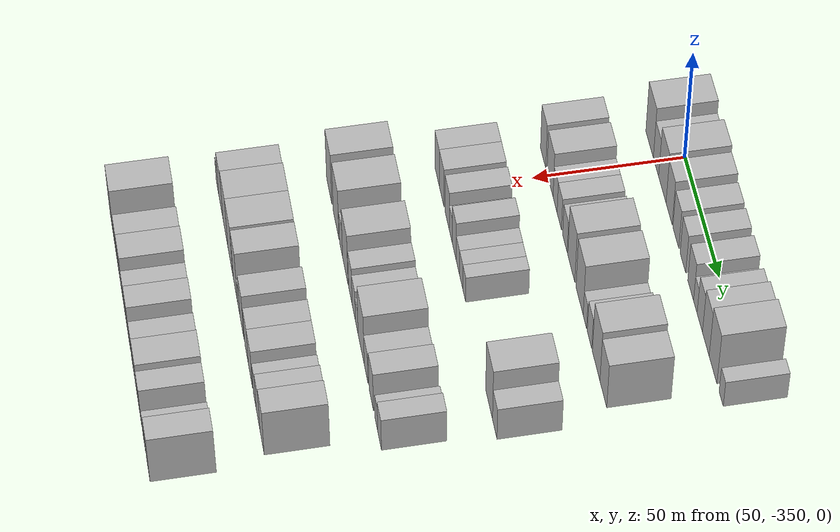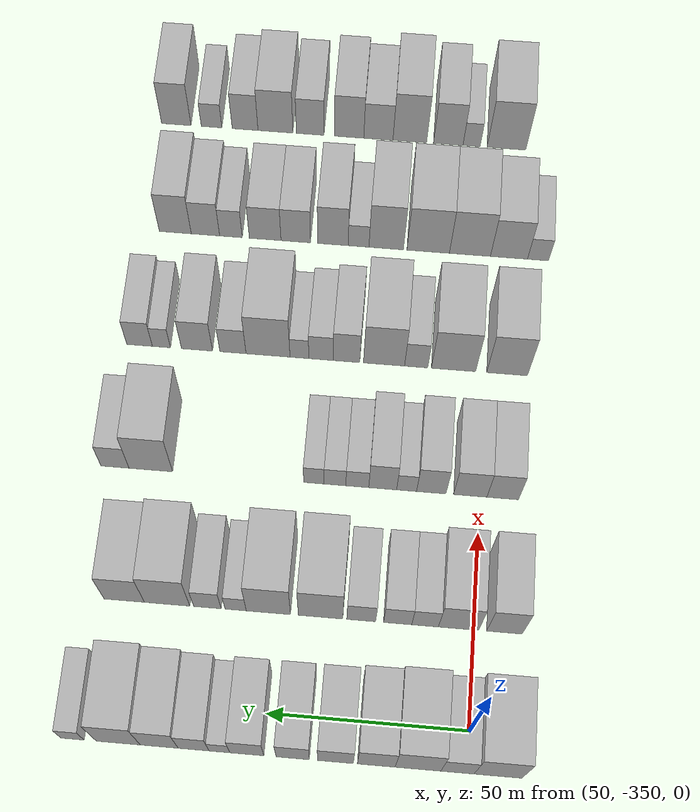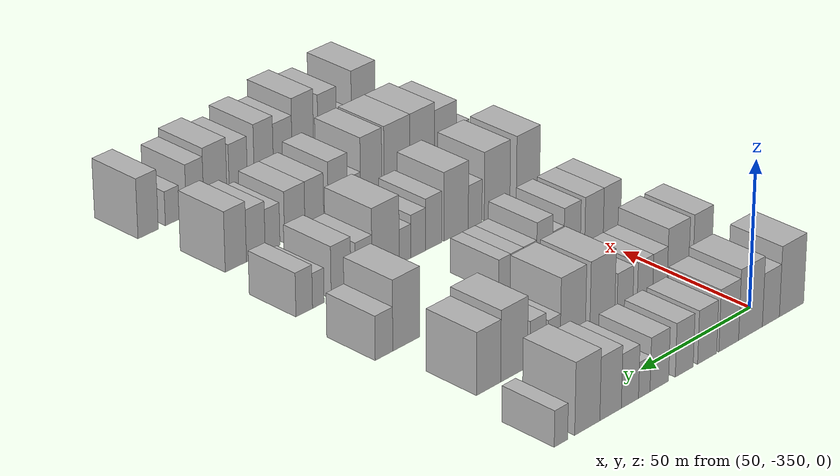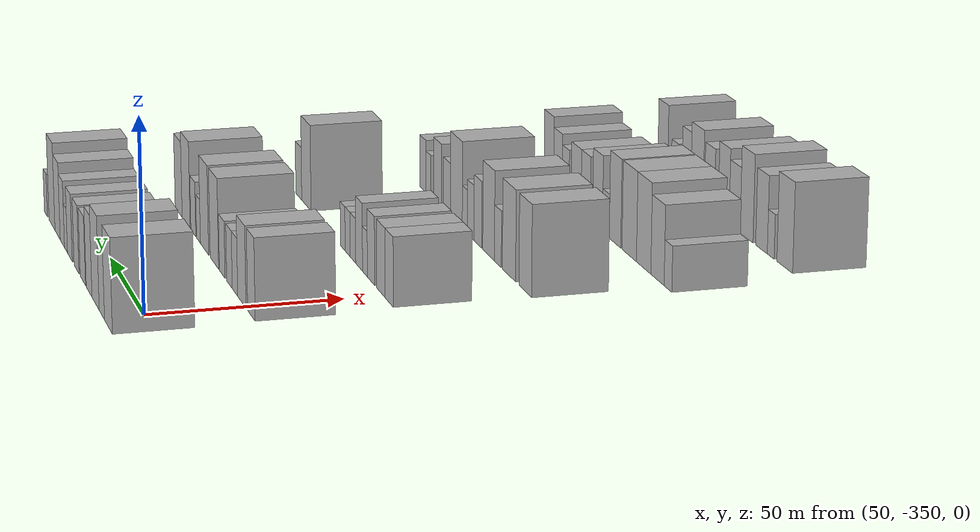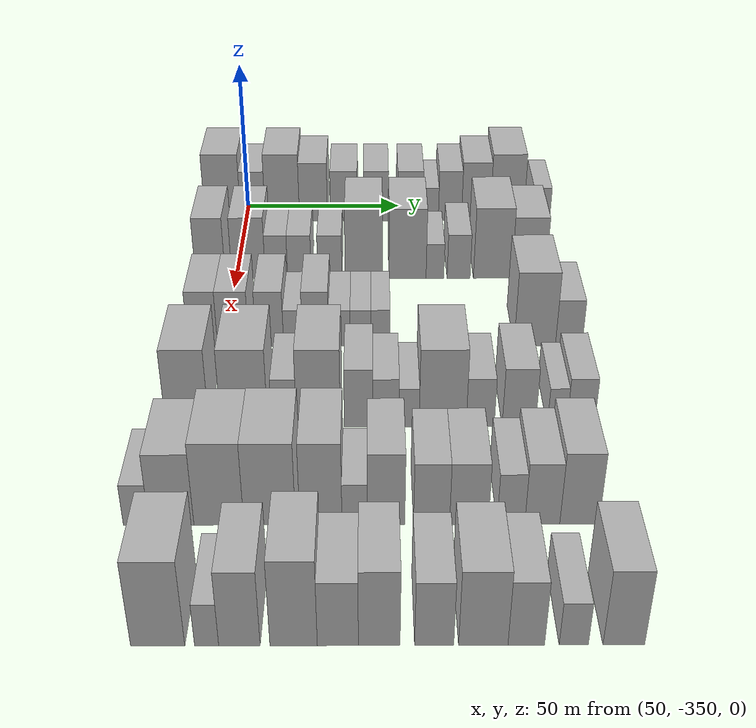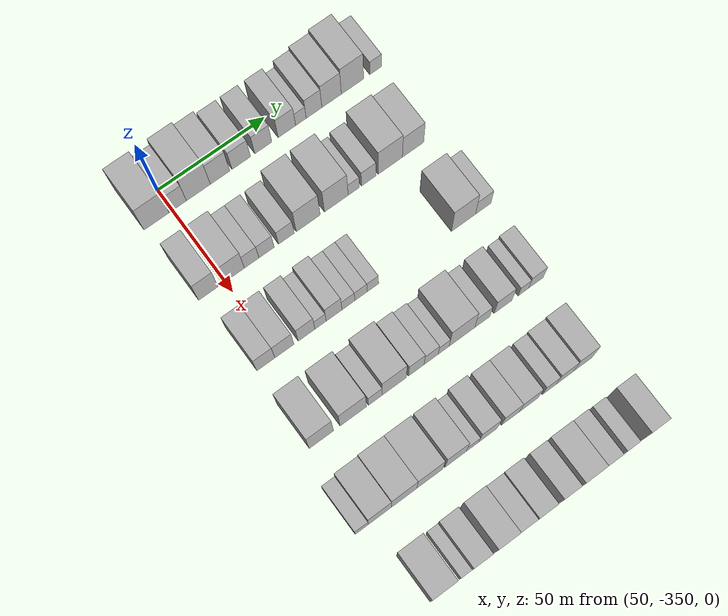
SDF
<sdf version="1.6">
 <world name="default">
  <model name="building_25">
   <static>1</static>
   <pose>50.0000 -357.4346 0 0.000000 0.000000 0.000000</pose>
   <link name="link">
    <pose>0 0 12.00 0 0 0</pose>
    <collision name="collision"><geometry><box><size>20.0000 11.5797 24.0000</size></box></geometry></collision>
    <visual name="visual">
     <cast_shadows>0</cast_shadows>
     <geometry><box><size>20.0000 11.5797 24.0000</size></box></geometry>
     <material>
      <script>
       <uri>model://HANNAS_wall/materials/scripts</uri>
       <uri>model://HANNAS_wall/materials/textures</uri>
       <name>vrc/HANNAS_wall</name>
      </script>
     </material>
    </visual>
   </link>
  </model>
  <model name="building_26">
   <static>1</static>
   <pose>50.0000 -347.6290 0 0.000000 0.000000 0.000000</pose>
   <link name="link">
    <pose>0 0 9.00 0 0 0</pose>
    <collision name="collision"><geometry><box><size>20.0000 8.0316 18.0000</size></box></geometry></collision>
    <visual name="visual">
     <cast_shadows>0</cast_shadows>
     <geometry><box><size>20.0000 8.0316 18.0000</size></box></geometry>
     <material>
      <script>
       <uri>model://HANNAS_wall/materials/scripts</uri>
       <uri>model://HANNAS_wall/materials/textures</uri>
       <name>vrc/HANNAS_wall</name>
      </script>
     </material>
    </visual>
   </link>
  </model>
  <model name="building_27">
   <static>1</static>
   <pose>50.0000 -338.0528 0 0.000000 0.000000 0.000000</pose>
   <link name="link">
    <pose>0 0 12.00 0 0 0</pose>
    <collision name="collision"><geometry><box><size>20.0000 11.1209 24.0000</size></box></geometry></collision>
    <visual name="visual">
     <cast_shadows>0</cast_shadows>
     <geometry><box><size>20.0000 11.1209 24.0000</size></box></geometry>
     <material>
      <script>
       <uri>model://HANNAS_wall/materials/scripts</uri>
       <uri>model://HANNAS_wall/materials/textures</uri>
       <name>vrc/HANNAS_wall</name>
      </script>
     </material>
    </visual>
   </link>
  </model>
  <model name="building_28">
   <static>1</static>
   <pose>50.0000 -327.9274 0 0.000000 0.000000 0.000000</pose>
   <link name="link">
    <pose>0 0 10.50 0 0 0</pose>
    <collision name="collision"><geometry><box><size>20.0000 9.1298 21.0000</size></box></geometry></collision>
    <visual name="visual">
     <cast_shadows>0</cast_shadows>
     <geometry><box><size>20.0000 9.1298 21.0000</size></box></geometry>
     <material>
      <script>
       <uri>model://HANNAS_wall/materials/scripts</uri>
       <uri>model://HANNAS_wall/materials/textures</uri>
       <name>vrc/HANNAS_wall</name>
      </script>
     </material>
    </visual>
   </link>
  </model>
  <model name="building_29">
   <static>1</static>
   <pose>50.0000 -318.0149 0 0.000000 0.000000 0.000000</pose>
   <link name="link">
    <pose>0 0 9.00 0 0 0</pose>
    <collision name="collision"><geometry><box><size>20.0000 8.6952 18.0000</size></box></geometry></collision>
    <visual name="visual">
     <cast_shadows>0</cast_shadows>
     <geometry><box><size>20.0000 8.6952 18.0000</size></box></geometry>
     <material>
      <script>
       <uri>model://HANNAS_wall/materials/scripts</uri>
       <uri>model://HANNAS_wall/materials/textures</uri>
       <name>vrc/HANNAS_wall</name>
      </script>
     </material>
    </visual>
   </link>
  </model>
  <model name="building_30">
   <static>1</static>
   <pose>50.0000 -307.6293 0 0.000000 0.000000 0.000000</pose>
   <link name="link">
    <pose>0 0 9.00 0 0 0</pose>
    <collision name="collision"><geometry><box><size>20.0000 8.0760 18.0000</size></box></geometry></collision>
    <visual name="visual">
     <cast_shadows>0</cast_shadows>
     <geometry><box><size>20.0000 8.0760 18.0000</size></box></geometry>
     <material>
      <script>
       <uri>model://HANNAS_wall/materials/scripts</uri>
       <uri>model://HANNAS_wall/materials/textures</uri>
       <name>vrc/HANNAS_wall</name>
      </script>
     </material>
    </visual>
   </link>
  </model>
  <model name="building_31">
   <static>1</static>
   <pose>50.0000 -296.4434 0 0.000000 0.000000 0.000000</pose>
   <link name="link">
    <pose>0 0 9.00 0 0 0</pose>
    <collision name="collision"><geometry><box><size>20.0000 8.2958 18.0000</size></box></geometry></collision>
    <visual name="visual">
     <cast_shadows>0</cast_shadows>
     <geometry><box><size>20.0000 8.2958 18.0000</size></box></geometry>
     <material>
      <script>
       <uri>model://HANNAS_wall/materials/scripts</uri>
       <uri>model://HANNAS_wall/materials/textures</uri>
       <name>vrc/HANNAS_wall</name>
      </script>
     </material>
    </visual>
   </link>
  </model>
  <model name="building_32">
   <static>1</static>
   <pose>50.0000 -289.7663 0 0.000000 0.000000 0.000000</pose>
   <link name="link">
    <pose>0 0 6.00 0 0 0</pose>
    <collision name="collision"><geometry><box><size>20.0000 5.0585 12.0000</size></box></geometry></collision>
    <visual name="visual">
     <cast_shadows>0</cast_shadows>
     <geometry><box><size>20.0000 5.0585 12.0000</size></box></geometry>
     <material>
      <script>
       <uri>model://HANNAS_wall/materials/scripts</uri>
       <uri>model://HANNAS_wall/materials/textures</uri>
       <name>vrc/HANNAS_wall</name>
      </script>
     </material>
    </visual>
   </link>
  </model>
  <model name="building_33">
   <static>1</static>
   <pose>50.0000 -283.4682 0 0.000000 0.000000 0.000000</pose>
   <link name="link">
    <pose>0 0 9.00 0 0 0</pose>
    <collision name="collision"><geometry><box><size>20.0000 7.5378 18.0000</size></box></geometry></collision>
    <visual name="visual">
     <cast_shadows>0</cast_shadows>
     <geometry><box><size>20.0000 7.5378 18.0000</size></box></geometry>
     <material>
      <script>
       <uri>model://HANNAS_wall/materials/scripts</uri>
       <uri>model://HANNAS_wall/materials/textures</uri>
       <name>vrc/HANNAS_wall</name>
      </script>
     </material>
    </visual>
   </link>
  </model>
  <model name="building_34">
   <static>1</static>
   <pose>50.0000 -275.0343 0 0.000000 0.000000 0.000000</pose>
   <link name="link">
    <pose>0 0 10.50 0 0 0</pose>
    <collision name="collision"><geometry><box><size>20.0000 9.3299 21.0000</size></box></geometry></collision>
    <visual name="visual">
     <cast_shadows>0</cast_shadows>
     <geometry><box><size>20.0000 9.3299 21.0000</size></box></geometry>
     <material>
      <script>
       <uri>model://HANNAS_wall/materials/scripts</uri>
       <uri>model://HANNAS_wall/materials/textures</uri>
       <name>vrc/HANNAS_wall</name>
      </script>
     </material>
    </visual>
   </link>
  </model>
  <model name="building_35">
   <static>1</static>
   <pose>50.0000 -264.9708 0 0.000000 0.000000 0.000000</pose>
   <link name="link">
    <pose>0 0 12.00 0 0 0</pose>
    <collision name="collision"><geometry><box><size>20.0000 10.7972 24.0000</size></box></geometry></collision>
    <visual name="visual">
     <cast_shadows>0</cast_shadows>
     <geometry><box><size>20.0000 10.7972 24.0000</size></box></geometry>
     <material>
      <script>
       <uri>model://HANNAS_wall/materials/scripts</uri>
       <uri>model://HANNAS_wall/materials/textures</uri>
       <name>vrc/HANNAS_wall</name>
      </script>
     </material>
    </visual>
   </link>
  </model>
  <model name="building_36">
   <static>1</static>
   <pose>50.0000 -253.7307 0 0.000000 0.000000 0.000000</pose>
   <link name="link">
    <pose>0 0 6.00 0 0 0</pose>
    <collision name="collision"><geometry><box><size>20.0000 5.6831 12.0000</size></box></geometry></collision>
    <visual name="visual">
     <cast_shadows>0</cast_shadows>
     <geometry><box><size>20.0000 5.6831 12.0000</size></box></geometry>
     <material>
      <script>
       <uri>model://HANNAS_wall/materials/scripts</uri>
       <uri>model://HANNAS_wall/materials/textures</uri>
       <name>vrc/HANNAS_wall</name>
      </script>
     </material>
    </visual>
   </link>
  </model>
  <model name="building_151">
   <static>1</static>
   <pose>85.0000 -357.6794 0 0.000000 0.000000 0.000000</pose>
   <link name="link">
    <pose>0 0 10.50 0 0 0</pose>
    <collision name="collision"><geometry><box><size>20.0000 8.9286 21.0000</size></box></geometry></collision>
    <visual name="visual">
     <cast_shadows>0</cast_shadows>
     <geometry><box><size>20.0000 8.9286 21.0000</size></box></geometry>
     <material>
      <script>
       <uri>model://HANNAS_wall/materials/scripts</uri>
       <uri>model://HANNAS_wall/materials/textures</uri>
       <name>vrc/HANNAS_wall</name>
      </script>
     </material>
    </visual>
   </link>
  </model>
  <model name="building_152">
   <static>1</static>
   <pose>85.0000 -346.1560 0 0.000000 0.000000 0.000000</pose>
   <link name="link">
    <pose>0 0 10.50 0 0 0</pose>
    <collision name="collision"><geometry><box><size>20.0000 10.1183 21.0000</size></box></geometry></collision>
    <visual name="visual">
     <cast_shadows>0</cast_shadows>
     <geometry><box><size>20.0000 10.1183 21.0000</size></box></geometry>
     <material>
      <script>
       <uri>model://HANNAS_wall/materials/scripts</uri>
       <uri>model://HANNAS_wall/materials/textures</uri>
       <name>vrc/HANNAS_wall</name>
      </script>
     </material>
    </visual>
   </link>
  </model>
  <model name="building_153">
   <static>1</static>
   <pose>85.0000 -337.7412 0 0.000000 0.000000 0.000000</pose>
   <link name="link">
    <pose>0 0 7.50 0 0 0</pose>
    <collision name="collision"><geometry><box><size>20.0000 6.7113 15.0000</size></box></geometry></collision>
    <visual name="visual">
     <cast_shadows>0</cast_shadows>
     <geometry><box><size>20.0000 6.7113 15.0000</size></box></geometry>
     <material>
      <script>
       <uri>model://HANNAS_wall/materials/scripts</uri>
       <uri>model://HANNAS_wall/materials/textures</uri>
       <name>vrc/HANNAS_wall</name>
      </script>
     </material>
    </visual>
   </link>
  </model>
  <model name="building_154">
   <static>1</static>
   <pose>85.0000 -330.8431 0 0.000000 0.000000 0.000000</pose>
   <link name="link">
    <pose>0 0 7.50 0 0 0</pose>
    <collision name="collision"><geometry><box><size>20.0000 7.0849 15.0000</size></box></geometry></collision>
    <visual name="visual">
     <cast_shadows>0</cast_shadows>
     <geometry><box><size>20.0000 7.0849 15.0000</size></box></geometry>
     <material>
      <script>
       <uri>model://HANNAS_wall/materials/scripts</uri>
       <uri>model://HANNAS_wall/materials/textures</uri>
       <name>vrc/HANNAS_wall</name>
      </script>
     </material>
    </visual>
   </link>
  </model>
  <model name="building_155">
   <static>1</static>
   <pose>85.0000 -321.6571 0 0.000000 0.000000 0.000000</pose>
   <link name="link">
    <pose>0 0 7.50 0 0 0</pose>
    <collision name="collision"><geometry><box><size>20.0000 7.2870 15.0000</size></box></geometry></collision>
    <visual name="visual">
     <cast_shadows>0</cast_shadows>
     <geometry><box><size>20.0000 7.2870 15.0000</size></box></geometry>
     <material>
      <script>
       <uri>model://HANNAS_wall/materials/scripts</uri>
       <uri>model://HANNAS_wall/materials/textures</uri>
       <name>vrc/HANNAS_wall</name>
      </script>
     </material>
    </visual>
   </link>
  </model>
  <model name="building_156">
   <static>1</static>
   <pose>85.0000 -311.4103 0 0.000000 0.000000 0.000000</pose>
   <link name="link">
    <pose>0 0 12.00 0 0 0</pose>
    <collision name="collision"><geometry><box><size>20.0000 11.2068 24.0000</size></box></geometry></collision>
    <visual name="visual">
     <cast_shadows>0</cast_shadows>
     <geometry><box><size>20.0000 11.2068 24.0000</size></box></geometry>
     <material>
      <script>
       <uri>model://HANNAS_wall/materials/scripts</uri>
       <uri>model://HANNAS_wall/materials/textures</uri>
       <name>vrc/HANNAS_wall</name>
      </script>
     </material>
    </visual>
   </link>
  </model>
  <model name="building_157">
   <static>1</static>
   <pose>85.0000 -298.2097 0 0.000000 0.000000 0.000000</pose>
   <link name="link">
    <pose>0 0 12.00 0 0 0</pose>
    <collision name="collision"><geometry><box><size>20.0000 11.1944 24.0000</size></box></geometry></collision>
    <visual name="visual">
     <cast_shadows>0</cast_shadows>
     <geometry><box><size>20.0000 11.1944 24.0000</size></box></geometry>
     <material>
      <script>
       <uri>model://HANNAS_wall/materials/scripts</uri>
       <uri>model://HANNAS_wall/materials/textures</uri>
       <name>vrc/HANNAS_wall</name>
      </script>
     </material>
    </visual>
   </link>
  </model>
  <model name="building_158">
   <static>1</static>
   <pose>85.0000 -289.9256 0 0.000000 0.000000 0.000000</pose>
   <link name="link">
    <pose>0 0 6.00 0 0 0</pose>
    <collision name="collision"><geometry><box><size>20.0000 5.3738 12.0000</size></box></geometry></collision>
    <visual name="visual">
     <cast_shadows>0</cast_shadows>
     <geometry><box><size>20.0000 5.3738 12.0000</size></box></geometry>
     <material>
      <script>
       <uri>model://HANNAS_wall/materials/scripts</uri>
       <uri>model://HANNAS_wall/materials/textures</uri>
       <name>vrc/HANNAS_wall</name>
      </script>
     </material>
    </visual>
   </link>
  </model>
  <model name="building_159">
   <static>1</static>
   <pose>85.0000 -282.7650 0 0.000000 0.000000 0.000000</pose>
   <link name="link">
    <pose>0 0 7.50 0 0 0</pose>
    <collision name="collision"><geometry><box><size>20.0000 6.9473 15.0000</size></box></geometry></collision>
    <visual name="visual">
     <cast_shadows>0</cast_shadows>
     <geometry><box><size>20.0000 6.9473 15.0000</size></box></geometry>
     <material>
      <script>
       <uri>model://HANNAS_wall/materials/scripts</uri>
       <uri>model://HANNAS_wall/materials/textures</uri>
       <name>vrc/HANNAS_wall</name>
      </script>
     </material>
    </visual>
   </link>
  </model>
  <model name="building_160">
   <static>1</static>
   <pose>85.0000 -272.5068 0 0.000000 0.000000 0.000000</pose>
   <link name="link">
    <pose>0 0 12.00 0 0 0</pose>
    <collision name="collision"><geometry><box><size>20.0000 11.5691 24.0000</size></box></geometry></collision>
    <visual name="visual">
     <cast_shadows>0</cast_shadows>
     <geometry><box><size>20.0000 11.5691 24.0000</size></box></geometry>
     <material>
      <script>
       <uri>model://HANNAS_wall/materials/scripts</uri>
       <uri>model://HANNAS_wall/materials/textures</uri>
       <name>vrc/HANNAS_wall</name>
      </script>
     </material>
    </visual>
   </link>
  </model>
  <model name="building_161">
   <static>1</static>
   <pose>85.0000 -261.5909 0 0.000000 0.000000 0.000000</pose>
   <link name="link">
    <pose>0 0 10.50 0 0 0</pose>
    <collision name="collision"><geometry><box><size>20.0000 10.2625 21.0000</size></box></geometry></collision>
    <visual name="visual">
     <cast_shadows>0</cast_shadows>
     <geometry><box><size>20.0000 10.2625 21.0000</size></box></geometry>
     <material>
      <script>
       <uri>model://HANNAS_wall/materials/scripts</uri>
       <uri>model://HANNAS_wall/materials/textures</uri>
       <name>vrc/HANNAS_wall</name>
      </script>
     </material>
    </visual>
   </link>
  </model>
  <model name="building_282">
   <static>1</static>
   <pose>120.0000 -355.9414 0 0.000000 0.000000 0.000000</pose>
   <link name="link">
    <pose>0 0 9.00 0 0 0</pose>
    <collision name="collision"><geometry><box><size>20.0000 8.1925 18.0000</size></box></geometry></collision>
    <visual name="visual">
     <cast_shadows>0</cast_shadows>
     <geometry><box><size>20.0000 8.1925 18.0000</size></box></geometry>
     <material>
      <script>
       <uri>model://HANNAS_wall/materials/scripts</uri>
       <uri>model://HANNAS_wall/materials/textures</uri>
       <name>vrc/HANNAS_wall</name>
      </script>
     </material>
    </visual>
   </link>
  </model>
  <model name="building_283">
   <static>1</static>
   <pose>120.0000 -347.5058 0 0.000000 0.000000 0.000000</pose>
   <link name="link">
    <pose>0 0 9.00 0 0 0</pose>
    <collision name="collision"><geometry><box><size>20.0000 8.6788 18.0000</size></box></geometry></collision>
    <visual name="visual">
     <cast_shadows>0</cast_shadows>
     <geometry><box><size>20.0000 8.6788 18.0000</size></box></geometry>
     <material>
      <script>
       <uri>model://HANNAS_wall/materials/scripts</uri>
       <uri>model://HANNAS_wall/materials/textures</uri>
       <name>vrc/HANNAS_wall</name>
      </script>
     </material>
    </visual>
   </link>
  </model>
  <model name="building_284">
   <static>1</static>
   <pose>120.0000 -337.3315 0 0.000000 0.000000 0.000000</pose>
   <link name="link">
    <pose>0 0 9.00 0 0 0</pose>
    <collision name="collision"><geometry><box><size>20.0000 7.6699 18.0000</size></box></geometry></collision>
    <visual name="visual">
     <cast_shadows>0</cast_shadows>
     <geometry><box><size>20.0000 7.6699 18.0000</size></box></geometry>
     <material>
      <script>
       <uri>model://HANNAS_wall/materials/scripts</uri>
       <uri>model://HANNAS_wall/materials/textures</uri>
       <name>vrc/HANNAS_wall</name>
      </script>
     </material>
    </visual>
   </link>
  </model>
  <model name="building_285">
   <static>1</static>
   <pose>120.0000 -330.8963 0 0.000000 0.000000 0.000000</pose>
   <link name="link">
    <pose>0 0 6.00 0 0 0</pose>
    <collision name="collision"><geometry><box><size>20.0000 5.2005 12.0000</size></box></geometry></collision>
    <visual name="visual">
     <cast_shadows>0</cast_shadows>
     <geometry><box><size>20.0000 5.2005 12.0000</size></box></geometry>
     <material>
      <script>
       <uri>model://HANNAS_wall/materials/scripts</uri>
       <uri>model://HANNAS_wall/materials/textures</uri>
       <name>vrc/HANNAS_wall</name>
      </script>
     </material>
    </visual>
   </link>
  </model>
  <model name="building_286">
   <static>1</static>
   <pose>120.0000 -324.6515 0 0.000000 0.000000 0.000000</pose>
   <link name="link">
    <pose>0 0 9.00 0 0 0</pose>
    <collision name="collision"><geometry><box><size>20.0000 7.2892 18.0000</size></box></geometry></collision>
    <visual name="visual">
     <cast_shadows>0</cast_shadows>
     <geometry><box><size>20.0000 7.2892 18.0000</size></box></geometry>
     <material>
      <script>
       <uri>model://HANNAS_wall/materials/scripts</uri>
       <uri>model://HANNAS_wall/materials/textures</uri>
       <name>vrc/HANNAS_wall</name>
      </script>
     </material>
    </visual>
   </link>
  </model>
  <model name="building_287">
   <static>1</static>
   <pose>120.0000 -318.0149 0 0.000000 0.000000 0.000000</pose>
   <link name="link">
    <pose>0 0 6.00 0 0 0</pose>
    <collision name="collision"><geometry><box><size>20.0000 5.9840 12.0000</size></box></geometry></collision>
    <visual name="visual">
     <cast_shadows>0</cast_shadows>
     <geometry><box><size>20.0000 5.9840 12.0000</size></box></geometry>
     <material>
      <script>
       <uri>model://HANNAS_wall/materials/scripts</uri>
       <uri>model://HANNAS_wall/materials/textures</uri>
       <name>vrc/HANNAS_wall</name>
      </script>
     </material>
    </visual>
   </link>
  </model>
  <model name="building_288">
   <static>1</static>
   <pose>120.0000 -312.1714 0 0.000000 0.000000 0.000000</pose>
   <link name="link">
    <pose>0 0 6.00 0 0 0</pose>
    <collision name="collision"><geometry><box><size>20.0000 5.7029 12.0000</size></box></geometry></collision>
    <visual name="visual">
     <cast_shadows>0</cast_shadows>
     <geometry><box><size>20.0000 5.7029 12.0000</size></box></geometry>
     <material>
      <script>
       <uri>model://HANNAS_wall/materials/scripts</uri>
       <uri>model://HANNAS_wall/materials/textures</uri>
       <name>vrc/HANNAS_wall</name>
      </script>
     </material>
    </visual>
   </link>
  </model>
  <model name="building_289">
   <static>1</static>
   <pose>120.0000 -306.6632 0 0.000000 0.000000 0.000000</pose>
   <link name="link">
    <pose>0 0 6.00 0 0 0</pose>
    <collision name="collision"><geometry><box><size>20.0000 5.3135 12.0000</size></box></geometry></collision>
    <visual name="visual">
     <cast_shadows>0</cast_shadows>
     <geometry><box><size>20.0000 5.3135 12.0000</size></box></geometry>
     <material>
      <script>
       <uri>model://HANNAS_wall/materials/scripts</uri>
       <uri>model://HANNAS_wall/materials/textures</uri>
       <name>vrc/HANNAS_wall</name>
      </script>
     </material>
    </visual>
   </link>
  </model>
  <model name="building_290">
   <static>1</static>
   <pose>120.0000 -263.7652 0 0.000000 0.000000 0.000000</pose>
   <link name="link">
    <pose>0 0 12.00 0 0 0</pose>
    <collision name="collision"><geometry><box><size>20.0000 11.4942 24.0000</size></box></geometry></collision>
    <visual name="visual">
     <cast_shadows>0</cast_shadows>
     <geometry><box><size>20.0000 11.4942 24.0000</size></box></geometry>
     <material>
      <script>
       <uri>model://HANNAS_wall/materials/scripts</uri>
       <uri>model://HANNAS_wall/materials/textures</uri>
       <name>vrc/HANNAS_wall</name>
      </script>
     </material>
    </visual>
   </link>
  </model>
  <model name="building_291">
   <static>1</static>
   <pose>120.0000 -254.3070 0 0.000000 0.000000 0.000000</pose>
   <link name="link">
    <pose>0 0 7.50 0 0 0</pose>
    <collision name="collision"><geometry><box><size>20.0000 7.4222 15.0000</size></box></geometry></collision>
    <visual name="visual">
     <cast_shadows>0</cast_shadows>
     <geometry><box><size>20.0000 7.4222 15.0000</size></box></geometry>
     <material>
      <script>
       <uri>model://HANNAS_wall/materials/scripts</uri>
       <uri>model://HANNAS_wall/materials/textures</uri>
       <name>vrc/HANNAS_wall</name>
      </script>
     </material>
    </visual>
   </link>
  </model>
  <model name="building_406">
   <static>1</static>
   <pose>155.0000 -355.8126 0 0.000000 0.000000 0.000000</pose>
   <link name="link">
    <pose>0 0 12.00 0 0 0</pose>
    <collision name="collision"><geometry><box><size>20.0000 10.9500 24.0000</size></box></geometry></collision>
    <visual name="visual">
     <cast_shadows>0</cast_shadows>
     <geometry><box><size>20.0000 10.9500 24.0000</size></box></geometry>
     <material>
      <script>
       <uri>model://HANNAS_wall/materials/scripts</uri>
       <uri>model://HANNAS_wall/materials/textures</uri>
       <name>vrc/HANNAS_wall</name>
      </script>
     </material>
    </visual>
   </link>
  </model>
  <model name="building_407">
   <static>1</static>
   <pose>155.0000 -341.3794 0 0.000000 0.000000 0.000000</pose>
   <link name="link">
    <pose>0 0 12.00 0 0 0</pose>
    <collision name="collision"><geometry><box><size>20.0000 11.9165 24.0000</size></box></geometry></collision>
    <visual name="visual">
     <cast_shadows>0</cast_shadows>
     <geometry><box><size>20.0000 11.9165 24.0000</size></box></geometry>
     <material>
      <script>
       <uri>model://HANNAS_wall/materials/scripts</uri>
       <uri>model://HANNAS_wall/materials/textures</uri>
       <name>vrc/HANNAS_wall</name>
      </script>
     </material>
    </visual>
   </link>
  </model>
  <model name="building_408">
   <static>1</static>
   <pose>155.0000 -331.2889 0 0.000000 0.000000 0.000000</pose>
   <link name="link">
    <pose>0 0 7.50 0 0 0</pose>
    <collision name="collision"><geometry><box><size>20.0000 6.2644 15.0000</size></box></geometry></collision>
    <visual name="visual">
     <cast_shadows>0</cast_shadows>
     <geometry><box><size>20.0000 6.2644 15.0000</size></box></geometry>
     <material>
      <script>
       <uri>model://HANNAS_wall/materials/scripts</uri>
       <uri>model://HANNAS_wall/materials/textures</uri>
       <name>vrc/HANNAS_wall</name>
      </script>
     </material>
    </visual>
   </link>
  </model>
  <model name="building_409">
   <static>1</static>
   <pose>155.0000 -322.5983 0 0.000000 0.000000 0.000000</pose>
   <link name="link">
    <pose>0 0 12.00 0 0 0</pose>
    <collision name="collision"><geometry><box><size>20.0000 11.1167 24.0000</size></box></geometry></collision>
    <visual name="visual">
     <cast_shadows>0</cast_shadows>
     <geometry><box><size>20.0000 11.1167 24.0000</size></box></geometry>
     <material>
      <script>
       <uri>model://HANNAS_wall/materials/scripts</uri>
       <uri>model://HANNAS_wall/materials/textures</uri>
       <name>vrc/HANNAS_wall</name>
      </script>
     </material>
    </visual>
   </link>
  </model>
  <model name="building_410">
   <static>1</static>
   <pose>155.0000 -312.4249 0 0.000000 0.000000 0.000000</pose>
   <link name="link">
    <pose>0 0 9.00 0 0 0</pose>
    <collision name="collision"><geometry><box><size>20.0000 7.2303 18.0000</size></box></geometry></collision>
    <visual name="visual">
     <cast_shadows>0</cast_shadows>
     <geometry><box><size>20.0000 7.2303 18.0000</size></box></geometry>
     <material>
      <script>
       <uri>model://HANNAS_wall/materials/scripts</uri>
       <uri>model://HANNAS_wall/materials/textures</uri>
       <name>vrc/HANNAS_wall</name>
      </script>
     </material>
    </visual>
   </link>
  </model>
  <model name="building_411">
   <static>1</static>
   <pose>155.0000 -305.5166 0 0.000000 0.000000 0.000000</pose>
   <link name="link">
    <pose>0 0 7.50 0 0 0</pose>
    <collision name="collision"><geometry><box><size>20.0000 6.5864 15.0000</size></box></geometry></collision>
    <visual name="visual">
     <cast_shadows>0</cast_shadows>
     <geometry><box><size>20.0000 6.5864 15.0000</size></box></geometry>
     <material>
      <script>
       <uri>model://HANNAS_wall/materials/scripts</uri>
       <uri>model://HANNAS_wall/materials/textures</uri>
       <name>vrc/HANNAS_wall</name>
      </script>
     </material>
    </visual>
   </link>
  </model>
  <model name="building_412">
   <static>1</static>
   <pose>155.0000 -299.6690 0 0.000000 0.000000 0.000000</pose>
   <link name="link">
    <pose>0 0 6.00 0 0 0</pose>
    <collision name="collision"><geometry><box><size>20.0000 5.1088 12.0000</size></box></geometry></collision>
    <visual name="visual">
     <cast_shadows>0</cast_shadows>
     <geometry><box><size>20.0000 5.1088 12.0000</size></box></geometry>
     <material>
      <script>
       <uri>model://HANNAS_wall/materials/scripts</uri>
       <uri>model://HANNAS_wall/materials/textures</uri>
       <name>vrc/HANNAS_wall</name>
      </script>
     </material>
    </visual>
   </link>
  </model>
  <model name="building_413">
   <static>1</static>
   <pose>155.0000 -291.1438 0 0.000000 0.000000 0.000000</pose>
   <link name="link">
    <pose>0 0 12.00 0 0 0</pose>
    <collision name="collision"><geometry><box><size>20.0000 11.9416 24.0000</size></box></geometry></collision>
    <visual name="visual">
     <cast_shadows>0</cast_shadows>
     <geometry><box><size>20.0000 11.9416 24.0000</size></box></geometry>
     <material>
      <script>
       <uri>model://HANNAS_wall/materials/scripts</uri>
       <uri>model://HANNAS_wall/materials/textures</uri>
       <name>vrc/HANNAS_wall</name>
      </script>
     </material>
    </visual>
   </link>
  </model>
  <model name="building_414">
   <static>1</static>
   <pose>155.0000 -281.6075 0 0.000000 0.000000 0.000000</pose>
   <link name="link">
    <pose>0 0 7.50 0 0 0</pose>
    <collision name="collision"><geometry><box><size>20.0000 7.1310 15.0000</size></box></geometry></collision>
    <visual name="visual">
     <cast_shadows>0</cast_shadows>
     <geometry><box><size>20.0000 7.1310 15.0000</size></box></geometry>
     <material>
      <script>
       <uri>model://HANNAS_wall/materials/scripts</uri>
       <uri>model://HANNAS_wall/materials/textures</uri>
       <name>vrc/HANNAS_wall</name>
      </script>
     </material>
    </visual>
   </link>
  </model>
  <model name="building_415">
   <static>1</static>
   <pose>155.0000 -271.8062 0 0.000000 0.000000 0.000000</pose>
   <link name="link">
    <pose>0 0 9.00 0 0 0</pose>
    <collision name="collision"><geometry><box><size>20.0000 8.4717 18.0000</size></box></geometry></collision>
    <visual name="visual">
     <cast_shadows>0</cast_shadows>
     <geometry><box><size>20.0000 8.4717 18.0000</size></box></geometry>
     <material>
      <script>
       <uri>model://HANNAS_wall/materials/scripts</uri>
       <uri>model://HANNAS_wall/materials/textures</uri>
       <name>vrc/HANNAS_wall</name>
      </script>
     </material>
    </visual>
   </link>
  </model>
  <model name="building_416">
   <static>1</static>
   <pose>155.0000 -262.1059 0 0.000000 0.000000 0.000000</pose>
   <link name="link">
    <pose>0 0 6.00 0 0 0</pose>
    <collision name="collision"><geometry><box><size>20.0000 4.9289 12.0000</size></box></geometry></collision>
    <visual name="visual">
     <cast_shadows>0</cast_shadows>
     <geometry><box><size>20.0000 4.9289 12.0000</size></box></geometry>
     <material>
      <script>
       <uri>model://HANNAS_wall/materials/scripts</uri>
       <uri>model://HANNAS_wall/materials/textures</uri>
       <name>vrc/HANNAS_wall</name>
      </script>
     </material>
    </visual>
   </link>
  </model>
  <model name="building_417">
   <static>1</static>
   <pose>155.0000 -256.1446 0 0.000000 0.000000 0.000000</pose>
   <link name="link">
    <pose>0 0 7.50 0 0 0</pose>
    <collision name="collision"><geometry><box><size>20.0000 6.9936 15.0000</size></box></geometry></collision>
    <visual name="visual">
     <cast_shadows>0</cast_shadows>
     <geometry><box><size>20.0000 6.9936 15.0000</size></box></geometry>
     <material>
      <script>
       <uri>model://HANNAS_wall/materials/scripts</uri>
       <uri>model://HANNAS_wall/materials/textures</uri>
       <name>vrc/HANNAS_wall</name>
      </script>
     </material>
    </visual>
   </link>
  </model>
  <model name="building_531">
   <static>1</static>
   <pose>190.0000 -363.1615 0 0.000000 0.000000 0.000000</pose>
   <link name="link">
    <pose>0 0 6.00 0 0 0</pose>
    <collision name="collision"><geometry><box><size>20.0000 5.8656 12.0000</size></box></geometry></collision>
    <visual name="visual">
     <cast_shadows>0</cast_shadows>
     <geometry><box><size>20.0000 5.8656 12.0000</size></box></geometry>
     <material>
      <script>
       <uri>model://HANNAS_wall/materials/scripts</uri>
       <uri>model://HANNAS_wall/materials/textures</uri>
       <name>vrc/HANNAS_wall</name>
      </script>
     </material>
    </visual>
   </link>
  </model>
  <model name="building_532">
   <static>1</static>
   <pose>190.0000 -355.0699 0 0.000000 0.000000 0.000000</pose>
   <link name="link">
    <pose>0 0 10.50 0 0 0</pose>
    <collision name="collision"><geometry><box><size>20.0000 10.3176 21.0000</size></box></geometry></collision>
    <visual name="visual">
     <cast_shadows>0</cast_shadows>
     <geometry><box><size>20.0000 10.3176 21.0000</size></box></geometry>
     <material>
      <script>
       <uri>model://HANNAS_wall/materials/scripts</uri>
       <uri>model://HANNAS_wall/materials/textures</uri>
       <name>vrc/HANNAS_wall</name>
      </script>
     </material>
    </visual>
   </link>
  </model>
  <model name="building_533">
   <static>1</static>
   <pose>190.0000 -344.1907 0 0.000000 0.000000 0.000000</pose>
   <link name="link">
    <pose>0 0 12.00 0 0 0</pose>
    <collision name="collision"><geometry><box><size>20.0000 11.4408 24.0000</size></box></geometry></collision>
    <visual name="visual">
     <cast_shadows>0</cast_shadows>
     <geometry><box><size>20.0000 11.4408 24.0000</size></box></geometry>
     <material>
      <script>
       <uri>model://HANNAS_wall/materials/scripts</uri>
       <uri>model://HANNAS_wall/materials/textures</uri>
       <name>vrc/HANNAS_wall</name>
      </script>
     </material>
    </visual>
   </link>
  </model>
  <model name="building_534">
   <static>1</static>
   <pose>190.0000 -332.5465 0 0.000000 0.000000 0.000000</pose>
   <link name="link">
    <pose>0 0 12.00 0 0 0</pose>
    <collision name="collision"><geometry><box><size>20.0000 11.8475 24.0000</size></box></geometry></collision>
    <visual name="visual">
     <cast_shadows>0</cast_shadows>
     <geometry><box><size>20.0000 11.8475 24.0000</size></box></geometry>
     <material>
      <script>
       <uri>model://HANNAS_wall/materials/scripts</uri>
       <uri>model://HANNAS_wall/materials/textures</uri>
       <name>vrc/HANNAS_wall</name>
      </script>
     </material>
    </visual>
   </link>
  </model>
  <model name="building_535">
   <static>1</static>
   <pose>190.0000 -320.8013 0 0.000000 0.000000 0.000000</pose>
   <link name="link">
    <pose>0 0 12.00 0 0 0</pose>
    <collision name="collision"><geometry><box><size>20.0000 9.6429 24.0000</size></box></geometry></collision>
    <visual name="visual">
     <cast_shadows>0</cast_shadows>
     <geometry><box><size>20.0000 9.6429 24.0000</size></box></geometry>
     <material>
      <script>
       <uri>model://HANNAS_wall/materials/scripts</uri>
       <uri>model://HANNAS_wall/materials/textures</uri>
       <name>vrc/HANNAS_wall</name>
      </script>
     </material>
    </visual>
   </link>
  </model>
  <model name="building_536">
   <static>1</static>
   <pose>190.0000 -313.0587 0 0.000000 0.000000 0.000000</pose>
   <link name="link">
    <pose>0 0 6.00 0 0 0</pose>
    <collision name="collision"><geometry><box><size>20.0000 5.8421 12.0000</size></box></geometry></collision>
    <visual name="visual">
     <cast_shadows>0</cast_shadows>
     <geometry><box><size>20.0000 5.8421 12.0000</size></box></geometry>
     <material>
      <script>
       <uri>model://HANNAS_wall/materials/scripts</uri>
       <uri>model://HANNAS_wall/materials/textures</uri>
       <name>vrc/HANNAS_wall</name>
      </script>
     </material>
    </visual>
   </link>
  </model>
  <model name="building_537">
   <static>1</static>
   <pose>190.0000 -305.8584 0 0.000000 0.000000 0.000000</pose>
   <link name="link">
    <pose>0 0 10.50 0 0 0</pose>
    <collision name="collision"><geometry><box><size>20.0000 8.5586 21.0000</size></box></geometry></collision>
    <visual name="visual">
     <cast_shadows>0</cast_shadows>
     <geometry><box><size>20.0000 8.5586 21.0000</size></box></geometry>
     <material>
      <script>
       <uri>model://HANNAS_wall/materials/scripts</uri>
       <uri>model://HANNAS_wall/materials/textures</uri>
       <name>vrc/HANNAS_wall</name>
      </script>
     </material>
    </visual>
   </link>
  </model>
  <model name="building_538">
   <static>1</static>
   <pose>190.0000 -295.4440 0 0.000000 0.000000 0.000000</pose>
   <link name="link">
    <pose>0 0 9.00 0 0 0</pose>
    <collision name="collision"><geometry><box><size>20.0000 8.2702 18.0000</size></box></geometry></collision>
    <visual name="visual">
     <cast_shadows>0</cast_shadows>
     <geometry><box><size>20.0000 8.2702 18.0000</size></box></geometry>
     <material>
      <script>
       <uri>model://HANNAS_wall/materials/scripts</uri>
       <uri>model://HANNAS_wall/materials/textures</uri>
       <name>vrc/HANNAS_wall</name>
      </script>
     </material>
    </visual>
   </link>
  </model>
  <model name="building_539">
   <static>1</static>
   <pose>190.0000 -286.8564 0 0.000000 0.000000 0.000000</pose>
   <link name="link">
    <pose>0 0 9.00 0 0 0</pose>
    <collision name="collision"><geometry><box><size>20.0000 8.9049 18.0000</size></box></geometry></collision>
    <visual name="visual">
     <cast_shadows>0</cast_shadows>
     <geometry><box><size>20.0000 8.9049 18.0000</size></box></geometry>
     <material>
      <script>
       <uri>model://HANNAS_wall/materials/scripts</uri>
       <uri>model://HANNAS_wall/materials/textures</uri>
       <name>vrc/HANNAS_wall</name>
      </script>
     </material>
    </visual>
   </link>
  </model>
  <model name="building_540">
   <static>1</static>
   <pose>190.0000 -277.2260 0 0.000000 0.000000 0.000000</pose>
   <link name="link">
    <pose>0 0 7.50 0 0 0</pose>
    <collision name="collision"><geometry><box><size>20.0000 6.3559 15.0000</size></box></geometry></collision>
    <visual name="visual">
     <cast_shadows>0</cast_shadows>
     <geometry><box><size>20.0000 6.3559 15.0000</size></box></geometry>
     <material>
      <script>
       <uri>model://HANNAS_wall/materials/scripts</uri>
       <uri>model://HANNAS_wall/materials/textures</uri>
       <name>vrc/HANNAS_wall</name>
      </script>
     </material>
    </visual>
   </link>
  </model>
  <model name="building_541">
   <static>1</static>
   <pose>190.0000 -270.0399 0 0.000000 0.000000 0.000000</pose>
   <link name="link">
    <pose>0 0 9.00 0 0 0</pose>
    <collision name="collision"><geometry><box><size>20.0000 8.0163 18.0000</size></box></geometry></collision>
    <visual name="visual">
     <cast_shadows>0</cast_shadows>
     <geometry><box><size>20.0000 8.0163 18.0000</size></box></geometry>
     <material>
      <script>
       <uri>model://HANNAS_wall/materials/scripts</uri>
       <uri>model://HANNAS_wall/materials/textures</uri>
       <name>vrc/HANNAS_wall</name>
      </script>
     </material>
    </visual>
   </link>
  </model>
  <model name="building_542">
   <static>1</static>
   <pose>190.0000 -261.5253 0 0.000000 0.000000 0.000000</pose>
   <link name="link">
    <pose>0 0 10.50 0 0 0</pose>
    <collision name="collision"><geometry><box><size>20.0000 9.0129 21.0000</size></box></geometry></collision>
    <visual name="visual">
     <cast_shadows>0</cast_shadows>
     <geometry><box><size>20.0000 9.0129 21.0000</size></box></geometry>
     <material>
      <script>
       <uri>model://HANNAS_wall/materials/scripts</uri>
       <uri>model://HANNAS_wall/materials/textures</uri>
       <name>vrc/HANNAS_wall</name>
      </script>
     </material>
    </visual>
   </link>
  </model>
  <model name="building_652">
   <static>1</static>
   <pose>225.0000 -353.0839 0 0.000000 0.000000 0.000000</pose>
   <link name="link">
    <pose>0 0 12.00 0 0 0</pose>
    <collision name="collision"><geometry><box><size>20.0000 11.1077 24.0000</size></box></geometry></collision>
    <visual name="visual">
     <cast_shadows>0</cast_shadows>
     <geometry><box><size>20.0000 11.1077 24.0000</size></box></geometry>
     <material>
      <script>
       <uri>model://HANNAS_wall/materials/scripts</uri>
       <uri>model://HANNAS_wall/materials/textures</uri>
       <name>vrc/HANNAS_wall</name>
      </script>
     </material>
    </visual>
   </link>
  </model>
  <model name="building_653">
   <static>1</static>
   <pose>225.0000 -343.0602 0 0.000000 0.000000 0.000000</pose>
   <link name="link">
    <pose>0 0 6.00 0 0 0</pose>
    <collision name="collision"><geometry><box><size>20.0000 4.9397 12.0000</size></box></geometry></collision>
    <visual name="visual">
     <cast_shadows>0</cast_shadows>
     <geometry><box><size>20.0000 4.9397 12.0000</size></box></geometry>
     <material>
      <script>
       <uri>model://HANNAS_wall/materials/scripts</uri>
       <uri>model://HANNAS_wall/materials/textures</uri>
       <name>vrc/HANNAS_wall</name>
      </script>
     </material>
    </visual>
   </link>
  </model>
  <model name="building_654">
   <static>1</static>
   <pose>225.0000 -336.3400 0 0.000000 0.000000 0.000000</pose>
   <link name="link">
    <pose>0 0 10.50 0 0 0</pose>
    <collision name="collision"><geometry><box><size>20.0000 8.5008 21.0000</size></box></geometry></collision>
    <visual name="visual">
     <cast_shadows>0</cast_shadows>
     <geometry><box><size>20.0000 8.5008 21.0000</size></box></geometry>
     <material>
      <script>
       <uri>model://HANNAS_wall/materials/scripts</uri>
       <uri>model://HANNAS_wall/materials/textures</uri>
       <name>vrc/HANNAS_wall</name>
      </script>
     </material>
    </visual>
   </link>
  </model>
  <model name="building_655">
   <static>1</static>
   <pose>225.0000 -325.2290 0 0.000000 0.000000 0.000000</pose>
   <link name="link">
    <pose>0 0 12.00 0 0 0</pose>
    <collision name="collision"><geometry><box><size>20.0000 9.7212 24.0000</size></box></geometry></collision>
    <visual name="visual">
     <cast_shadows>0</cast_shadows>
     <geometry><box><size>20.0000 9.7212 24.0000</size></box></geometry>
     <material>
      <script>
       <uri>model://HANNAS_wall/materials/scripts</uri>
       <uri>model://HANNAS_wall/materials/textures</uri>
       <name>vrc/HANNAS_wall</name>
      </script>
     </material>
    </visual>
   </link>
  </model>
  <model name="building_656">
   <static>1</static>
   <pose>225.0000 -316.1534 0 0.000000 0.000000 0.000000</pose>
   <link name="link">
    <pose>0 0 9.00 0 0 0</pose>
    <collision name="collision"><geometry><box><size>20.0000 8.4300 18.0000</size></box></geometry></collision>
    <visual name="visual">
     <cast_shadows>0</cast_shadows>
     <geometry><box><size>20.0000 8.4300 18.0000</size></box></geometry>
     <material>
      <script>
       <uri>model://HANNAS_wall/materials/scripts</uri>
       <uri>model://HANNAS_wall/materials/textures</uri>
       <name>vrc/HANNAS_wall</name>
      </script>
     </material>
    </visual>
   </link>
  </model>
  <model name="building_657">
   <static>1</static>
   <pose>225.0000 -307.6736 0 0.000000 0.000000 0.000000</pose>
   <link name="link">
    <pose>0 0 10.50 0 0 0</pose>
    <collision name="collision"><geometry><box><size>20.0000 8.5296 21.0000</size></box></geometry></collision>
    <visual name="visual">
     <cast_shadows>0</cast_shadows>
     <geometry><box><size>20.0000 8.5296 21.0000</size></box></geometry>
     <material>
      <script>
       <uri>model://HANNAS_wall/materials/scripts</uri>
       <uri>model://HANNAS_wall/materials/textures</uri>
       <name>vrc/HANNAS_wall</name>
      </script>
     </material>
    </visual>
   </link>
  </model>
  <model name="building_658">
   <static>1</static>
   <pose>225.0000 -296.3978 0 0.000000 0.000000 0.000000</pose>
   <link name="link">
    <pose>0 0 9.00 0 0 0</pose>
    <collision name="collision"><geometry><box><size>20.0000 8.0220 18.0000</size></box></geometry></collision>
    <visual name="visual">
     <cast_shadows>0</cast_shadows>
     <geometry><box><size>20.0000 8.0220 18.0000</size></box></geometry>
     <material>
      <script>
       <uri>model://HANNAS_wall/materials/scripts</uri>
       <uri>model://HANNAS_wall/materials/textures</uri>
       <name>vrc/HANNAS_wall</name>
      </script>
     </material>
    </visual>
   </link>
  </model>
  <model name="building_659">
   <static>1</static>
   <pose>225.0000 -286.3210 0 0.000000 0.000000 0.000000</pose>
   <link name="link">
    <pose>0 0 10.50 0 0 0</pose>
    <collision name="collision"><geometry><box><size>20.0000 10.1315 21.0000</size></box></geometry></collision>
    <visual name="visual">
     <cast_shadows>0</cast_shadows>
     <geometry><box><size>20.0000 10.1315 21.0000</size></box></geometry>
     <material>
      <script>
       <uri>model://HANNAS_wall/materials/scripts</uri>
       <uri>model://HANNAS_wall/materials/textures</uri>
       <name>vrc/HANNAS_wall</name>
      </script>
     </material>
    </visual>
   </link>
  </model>
  <model name="building_660">
   <static>1</static>
   <pose>225.0000 -277.5012 0 0.000000 0.000000 0.000000</pose>
   <link name="link">
    <pose>0 0 9.00 0 0 0</pose>
    <collision name="collision"><geometry><box><size>20.0000 7.5081 18.0000</size></box></geometry></collision>
    <visual name="visual">
     <cast_shadows>0</cast_shadows>
     <geometry><box><size>20.0000 7.5081 18.0000</size></box></geometry>
     <material>
      <script>
       <uri>model://HANNAS_wall/materials/scripts</uri>
       <uri>model://HANNAS_wall/materials/textures</uri>
       <name>vrc/HANNAS_wall</name>
      </script>
     </material>
    </visual>
   </link>
  </model>
  <model name="building_661">
   <static>1</static>
   <pose>225.0000 -267.7478 0 0.000000 0.000000 0.000000</pose>
   <link name="link">
    <pose>0 0 6.00 0 0 0</pose>
    <collision name="collision"><geometry><box><size>20.0000 5.9989 12.0000</size></box></geometry></collision>
    <visual name="visual">
     <cast_shadows>0</cast_shadows>
     <geometry><box><size>20.0000 5.9989 12.0000</size></box></geometry>
     <material>
      <script>
       <uri>model://HANNAS_wall/materials/scripts</uri>
       <uri>model://HANNAS_wall/materials/textures</uri>
       <name>vrc/HANNAS_wall</name>
      </script>
     </material>
    </visual>
   </link>
  </model>
  <model name="building_662">
   <static>1</static>
   <pose>225.0000 -257.4661 0 0.000000 0.000000 0.000000</pose>
   <link name="link">
    <pose>0 0 10.50 0 0 0</pose>
    <collision name="collision"><geometry><box><size>20.0000 8.5644 21.0000</size></box></geometry></collision>
    <visual name="visual">
     <cast_shadows>0</cast_shadows>
     <geometry><box><size>20.0000 8.5644 21.0000</size></box></geometry>
     <material>
      <script>
       <uri>model://HANNAS_wall/materials/scripts</uri>
       <uri>model://HANNAS_wall/materials/textures</uri>
       <name>vrc/HANNAS_wall</name>
      </script>
     </material>
    </visual>
   </link>
  </model>
 </world>
</sdf>
